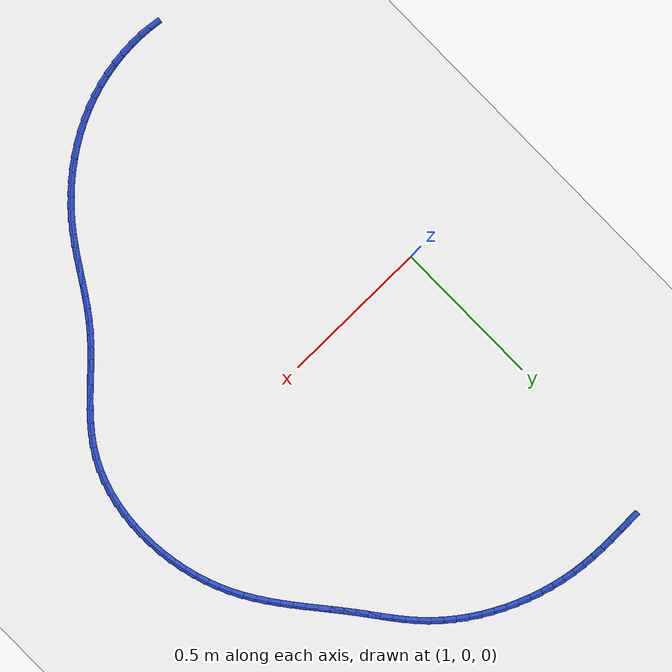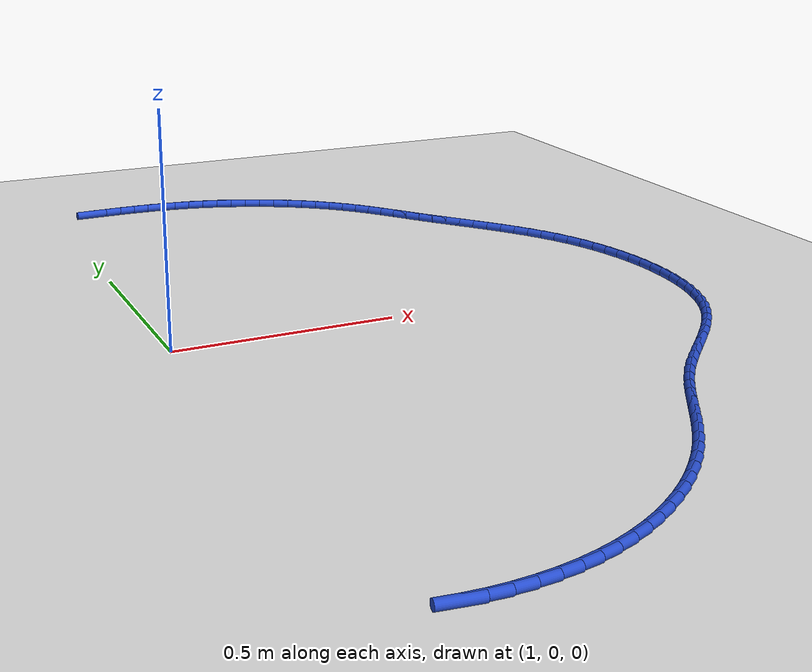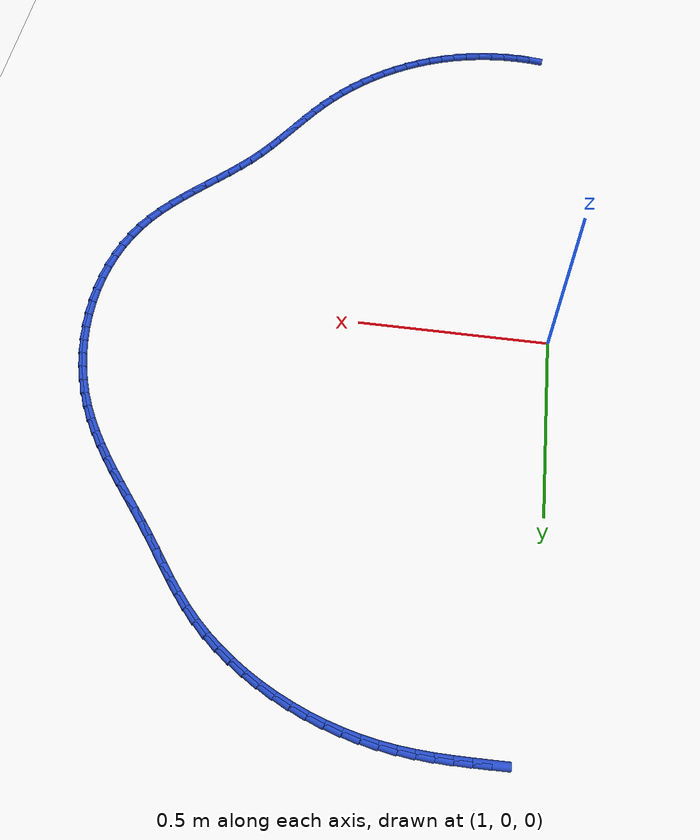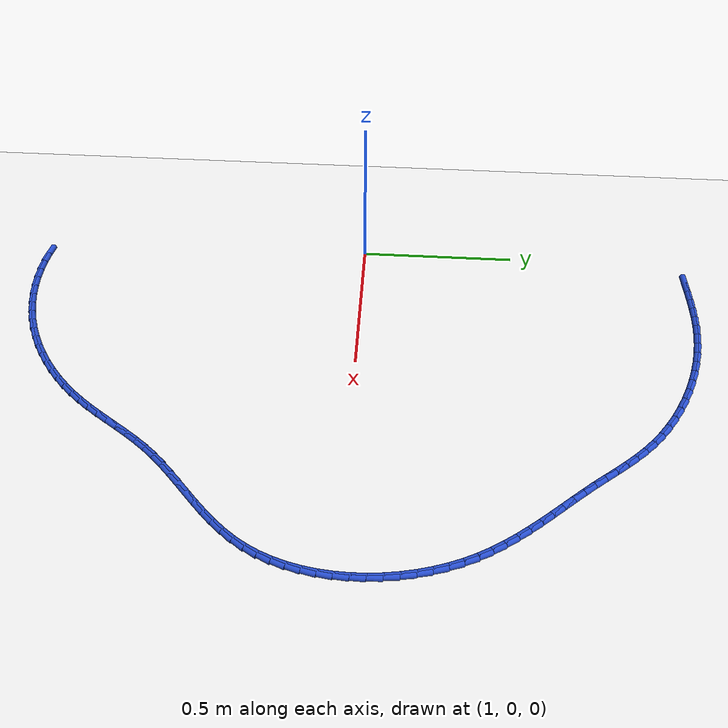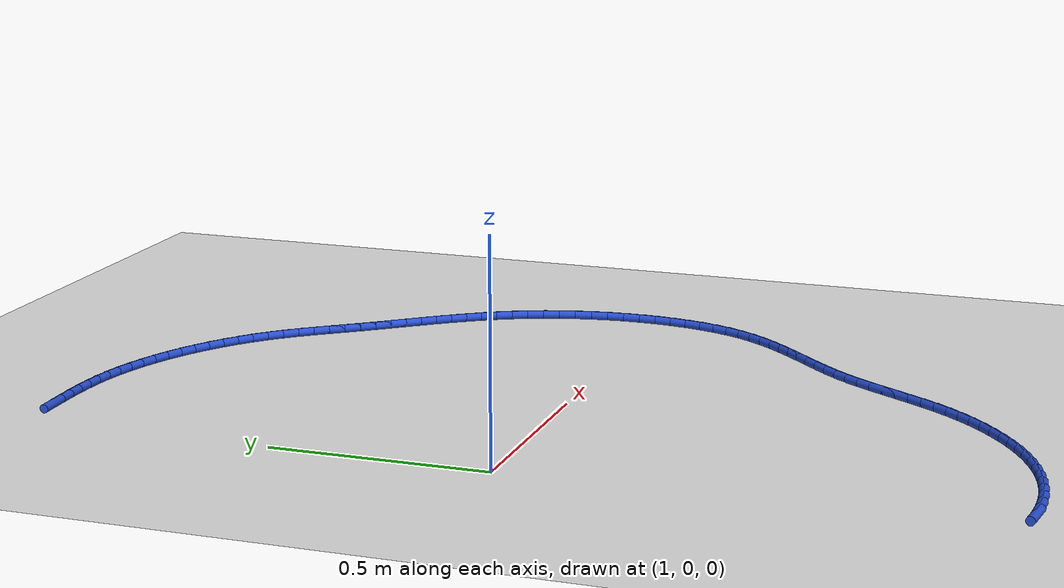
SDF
<sdf version="1.6">
 <world name="default">
  <model name="ground_plane">
   <static>1</static>
   <link name="link">
    <collision name="collision">
     <geometry><plane><normal>0 0 1</normal><size>100 100</size></plane></geometry>
     <surface><friction><ode><mu>100</mu><mu2>50</mu2></ode></friction></surface>
    </collision>
    <visual name="visual">
     <cast_shadows>0</cast_shadows>
     <geometry><plane><normal>0 0 1</normal><size>100 100</size></plane></geometry>
     <material>
      <script><uri>file://media/materials/scripts/gazebo.material</uri><name>Gazebo/WhiteGlow</name></script>
     </material>
    </visual>
   </link>
  </model>
  <model name="line">
   <link name="link_43">
    <pose>1.0948288908993886 1.072329613193624 0.01 0 1.57 0.027946312179015293</pose>
    <collision name="collision">
     <geometry><cylinder><radius>0.01</radius><length>0.08</length></cylinder></geometry>
    </collision>
    <visual name="visual">
     <material>
      <script><name>Gazebo/Blue</name><uri>file://media/materials/scripts/gazebo.material</uri></script>
     </material>
     <geometry><cylinder><radius>0.01</radius><length>0.08</length></cylinder></geometry>
    </visual>
   </link>
   <link name="link_44">
    <pose>1.1346138103363617 1.0734417445108073 0.01 0 1.57 0.015410495042441434</pose>
    <collision name="collision">
     <geometry><cylinder><radius>0.01</radius><length>0.08</length></cylinder></geometry>
    </collision>
    <visual name="visual">
     <material>
      <script><name>Gazebo/Blue</name><uri>file://media/materials/scripts/gazebo.material</uri></script>
     </material>
     <geometry><cylinder><radius>0.01</radius><length>0.08</length></cylinder></geometry>
    </visual>
   </link>
   <link name="link_45">
    <pose>1.173879106840559 1.0740468900726836 0.01 0 1.57 -0.0057107059708064066</pose>
    <collision name="collision">
     <geometry><cylinder><radius>0.01</radius><length>0.08</length></cylinder></geometry>
    </collision>
    <visual name="visual">
     <material>
      <script><name>Gazebo/Blue</name><uri>file://media/materials/scripts/gazebo.material</uri></script>
     </material>
     <geometry><cylinder><radius>0.01</radius><length>0.08</length></cylinder></geometry>
    </visual>
   </link>
   <link name="link_46">
    <pose>1.21276620763927 1.0738248148598422 0.01 0 1.57 -0.035419055421516854</pose>
    <collision name="collision">
     <geometry><cylinder><radius>0.01</radius><length>0.08</length></cylinder></geometry>
    </collision>
    <visual name="visual">
     <material>
      <script><name>Gazebo/Blue</name><uri>file://media/materials/scripts/gazebo.material</uri></script>
     </material>
     <geometry><cylinder><radius>0.01</radius><length>0.08</length></cylinder></geometry>
    </visual>
   </link>
   <link name="link_47">
    <pose>1.2514165399597839 1.0724552838528723 0.01 0 1.57 -0.07345655687997786</pose>
    <collision name="collision">
     <geometry><cylinder><radius>0.01</radius><length>0.08</length></cylinder></geometry>
    </collision>
    <visual name="visual">
     <material>
      <script><name>Gazebo/Blue</name><uri>file://media/materials/scripts/gazebo.material</uri></script>
     </material>
     <geometry><cylinder><radius>0.01</radius><length>0.08</length></cylinder></geometry>
    </visual>
   </link>
   <link name="link_48">
    <pose>1.2899715310293896 1.0696180620323636 0.01 0 1.57 -0.1192505983145177</pose>
    <collision name="collision">
     <geometry><cylinder><radius>0.01</radius><length>0.08</length></cylinder></geometry>
    </collision>
    <visual name="visual">
     <material>
      <script><name>Gazebo/Blue</name><uri>file://media/materials/scripts/gazebo.material</uri></script>
     </material>
     <geometry><cylinder><radius>0.01</radius><length>0.08</length></cylinder></geometry>
    </visual>
   </link>
   <link name="link_49">
    <pose>1.3285726071095398 1.064992915519093 0.01 0 1.57 -0.17047003964254903</pose>
    <collision name="collision">
     <geometry><cylinder><radius>0.01</radius><length>0.08</length></cylinder></geometry>
    </collision>
    <visual name="visual">
     <material>
      <script><name>Gazebo/Blue</name><uri>file://media/materials/scripts/gazebo.material</uri></script>
     </material>
     <geometry><cylinder><radius>0.01</radius><length>0.08</length></cylinder></geometry>
    </visual>
   </link>
   <link name="link_50">
    <pose>1.3673054528960336 1.0583254143526675 0.01 0 1.57 -0.22140598250828952</pose>
    <collision name="collision">
     <geometry><cylinder><radius>0.01</radius><length>0.08</length></cylinder></geometry>
    </collision>
    <visual name="visual">
     <material>
      <script><name>Gazebo/Blue</name><uri>file://media/materials/scripts/gazebo.material</uri></script>
     </material>
     <geometry><cylinder><radius>0.01</radius><length>0.08</length></cylinder></geometry>
    </visual>
   </link>
   <link name="link_51">
    <pose>1.406049852251417 1.049604198202317 0.01 0 1.57 -0.27121711104897983</pose>
    <collision name="collision">
     <geometry><cylinder><radius>0.01</radius><length>0.08</length></cylinder></geometry>
    </collision>
    <visual name="visual">
     <material>
      <script><name>Gazebo/Blue</name><uri>file://media/materials/scripts/gazebo.material</uri></script>
     </material>
     <geometry><cylinder><radius>0.01</radius><length>0.08</length></cylinder></geometry>
    </visual>
   </link>
   <link name="link_52">
    <pose>1.4446380582624538 1.0388740176712756 0.01 0 1.57 -0.3203301551867465</pose>
    <collision name="collision">
     <geometry><cylinder><radius>0.01</radius><length>0.08</length></cylinder></geometry>
    </collision>
    <visual name="visual">
     <material>
      <script><name>Gazebo/Blue</name><uri>file://media/materials/scripts/gazebo.material</uri></script>
     </material>
     <geometry><cylinder><radius>0.01</radius><length>0.08</length></cylinder></geometry>
    </visual>
   </link>
   <link name="link_53">
    <pose>1.4829023240159038 1.0261796233627778 0.01 0 1.57 -0.36915438253753846</pose>
    <collision name="collision">
     <geometry><cylinder><radius>0.01</radius><length>0.08</length></cylinder></geometry>
    </collision>
    <visual name="visual">
     <material>
      <script><name>Gazebo/Blue</name><uri>file://media/materials/scripts/gazebo.material</uri></script>
     </material>
     <geometry><cylinder><radius>0.01</radius><length>0.08</length></cylinder></geometry>
    </visual>
   </link>
   <link name="link_54">
    <pose>1.5206749025985302 1.0115657658800576 0.01 0 1.57 -0.41808570130019196</pose>
    <collision name="collision">
     <geometry><cylinder><radius>0.01</radius><length>0.08</length></cylinder></geometry>
    </collision>
    <visual name="visual">
     <material>
      <script><name>Gazebo/Blue</name><uri>file://media/materials/scripts/gazebo.material</uri></script>
     </material>
     <geometry><cylinder><radius>0.01</radius><length>0.08</length></cylinder></geometry>
    </visual>
   </link>
   <link name="link_55">
    <pose>1.5577880470970946 0.995077195826349 0.01 0 1.57 -0.4675104874489359</pose>
    <collision name="collision">
     <geometry><cylinder><radius>0.01</radius><length>0.08</length></cylinder></geometry>
    </collision>
    <visual name="visual">
     <material>
      <script><name>Gazebo/Blue</name><uri>file://media/materials/scripts/gazebo.material</uri></script>
     </material>
     <geometry><cylinder><radius>0.01</radius><length>0.08</length></cylinder></geometry>
    </visual>
   </link>
   <link name="link_56">
    <pose>1.5940740105983588 0.9767586638048867 0.01 0 1.57 -0.5178087026499977</pose>
    <collision name="collision">
     <geometry><cylinder><radius>0.01</radius><length>0.08</length></cylinder></geometry>
    </collision>
    <visual name="visual">
     <material>
      <script><name>Gazebo/Blue</name><uri>file://media/materials/scripts/gazebo.material</uri></script>
     </material>
     <geometry><cylinder><radius>0.01</radius><length>0.08</length></cylinder></geometry>
    </visual>
   </link>
   <link name="link_57">
    <pose>1.6293650461890847 0.9566549204189045 0.01 0 1.57 -0.5693558706678074</pose>
    <collision name="collision">
     <geometry><cylinder><radius>0.01</radius><length>0.08</length></cylinder></geometry>
    </collision>
    <visual name="visual">
     <material>
      <script><name>Gazebo/Blue</name><uri>file://media/materials/scripts/gazebo.material</uri></script>
     </material>
     <geometry><cylinder><radius>0.01</radius><length>0.08</length></cylinder></geometry>
    </visual>
   </link>
   <link name="link_58">
    <pose>1.6634934069560345 0.9348107162716368 0.01 0 1.57 -0.622523420351744</pose>
    <collision name="collision">
     <geometry><cylinder><radius>0.01</radius><length>0.08</length></cylinder></geometry>
    </collision>
    <visual name="visual">
     <material>
      <script><name>Gazebo/Blue</name><uri>file://media/materials/scripts/gazebo.material</uri></script>
     </material>
     <geometry><cylinder><radius>0.01</radius><length>0.08</length></cylinder></geometry>
    </visual>
   </link>
   <link name="link_59">
    <pose>1.6962913459859688 0.9112708019663178 0.01 0 1.57 -0.6776767998014511</pose>
    <collision name="collision">
     <geometry><cylinder><radius>0.01</radius><length>0.08</length></cylinder></geometry>
    </collision>
    <visual name="visual">
     <material>
      <script><name>Gazebo/Blue</name><uri>file://media/materials/scripts/gazebo.material</uri></script>
     </material>
     <geometry><cylinder><radius>0.01</radius><length>0.08</length></cylinder></geometry>
    </visual>
   </link>
   <link name="link_60">
    <pose>1.727591116365651 0.8860799281061817 0.01 0 1.57 -0.7351706431296637</pose>
    <collision name="collision">
     <geometry><cylinder><radius>0.01</radius><length>0.08</length></cylinder></geometry>
    </collision>
    <visual name="visual">
     <material>
      <script><name>Gazebo/Blue</name><uri>file://media/materials/scripts/gazebo.material</uri></script>
     </material>
     <geometry><cylinder><radius>0.01</radius><length>0.08</length></cylinder></geometry>
    </visual>
   </link>
   <link name="link_61">
    <pose>1.7572249711818426 0.8592828452944626 0.01 0 1.57 -0.7950179411912113</pose>
    <collision name="collision">
     <geometry><cylinder><radius>0.01</radius><length>0.08</length></cylinder></geometry>
    </collision>
    <visual name="visual">
     <material>
      <script><name>Gazebo/Blue</name><uri>file://media/materials/scripts/gazebo.material</uri></script>
     </material>
     <geometry><cylinder><radius>0.01</radius><length>0.08</length></cylinder></geometry>
    </visual>
   </link>
   <link name="link_62">
    <pose>1.785037131989895 0.8309303765635527 0.01 0 1.57 -0.8494318743351492</pose>
    <collision name="collision">
     <geometry><cylinder><radius>0.01</radius><length>0.08</length></cylinder></geometry>
    </collision>
    <visual name="visual">
     <material>
      <script><name>Gazebo/Blue</name><uri>file://media/materials/scripts/gazebo.material</uri></script>
     </material>
     <geometry><cylinder><radius>0.01</radius><length>0.08</length></cylinder></geometry>
    </visual>
   </link>
   <link name="link_63">
    <pose>1.8111650797487953 0.8012221356570319 0.01 0 1.57 -0.8898018991293719</pose>
    <collision name="collision">
     <geometry><cylinder><radius>0.01</radius><length>0.08</length></cylinder></geometry>
    </collision>
    <visual name="visual">
     <material>
      <script><name>Gazebo/Blue</name><uri>file://media/materials/scripts/gazebo.material</uri></script>
     </material>
     <geometry><cylinder><radius>0.01</radius><length>0.08</length></cylinder></geometry>
    </visual>
   </link>
   <link name="link_64">
    <pose>1.8360499085437387 0.7705117801868624 0.01 0 1.57 -0.9154983917307732</pose>
    <collision name="collision">
     <geometry><cylinder><radius>0.01</radius><length>0.08</length></cylinder></geometry>
    </collision>
    <visual name="visual">
     <material>
      <script><name>Gazebo/Blue</name><uri>file://media/materials/scripts/gazebo.material</uri></script>
     </material>
     <geometry><cylinder><radius>0.01</radius><length>0.08</length></cylinder></geometry>
    </visual>
   </link>
   <link name="link_65">
    <pose>1.860146752454534 0.7391600912221141 0.01 0 1.57 -0.9264902060715831</pose>
    <collision name="collision">
     <geometry><cylinder><radius>0.01</radius><length>0.08</length></cylinder></geometry>
    </collision>
    <visual name="visual">
     <material>
      <script><name>Gazebo/Blue</name><uri>file://media/materials/scripts/gazebo.material</uri></script>
     </material>
     <geometry><cylinder><radius>0.01</radius><length>0.08</length></cylinder></geometry>
    </visual>
   </link>
   <link name="link_66">
    <pose>1.8839107455609876 0.7075278498318556 0.01 0 1.57 -0.9228019884938927</pose>
    <collision name="collision">
     <geometry><cylinder><radius>0.01</radius><length>0.08</length></cylinder></geometry>
    </collision>
    <visual name="visual">
     <material>
      <script><name>Gazebo/Blue</name><uri>file://media/materials/scripts/gazebo.material</uri></script>
     </material>
     <geometry><cylinder><radius>0.01</radius><length>0.08</length></cylinder></geometry>
    </visual>
   </link>
   <link name="link_67">
    <pose>1.9077970219429063 0.6759758370851571 0.01 0 1.57 -0.9066860911887052</pose>
    <collision name="collision">
     <geometry><cylinder><radius>0.01</radius><length>0.08</length></cylinder></geometry>
    </collision>
    <visual name="visual">
     <material>
      <script><name>Gazebo/Blue</name><uri>file://media/materials/scripts/gazebo.material</uri></script>
     </material>
     <geometry><cylinder><radius>0.01</radius><length>0.08</length></cylinder></geometry>
    </visual>
   </link>
   <link name="link_68">
    <pose>1.9321906101087032 0.6448103667128161 0.01 0 1.57 -0.8928430830756112</pose>
    <collision name="collision">
     <geometry><cylinder><radius>0.01</radius><length>0.08</length></cylinder></geometry>
    </collision>
    <visual name="visual">
     <material>
      <script><name>Gazebo/Blue</name><uri>file://media/materials/scripts/gazebo.material</uri></script>
     </material>
     <geometry><cylinder><radius>0.01</radius><length>0.08</length></cylinder></geometry>
    </visual>
   </link>
   <link name="link_69">
    <pose>1.957017099077859 0.6139807987034206 0.01 0 1.57 -0.8871869909910638</pose>
    <collision name="collision">
     <geometry><cylinder><radius>0.01</radius><length>0.08</length></cylinder></geometry>
    </collision>
    <visual name="visual">
     <material>
      <script><name>Gazebo/Blue</name><uri>file://media/materials/scripts/gazebo.material</uri></script>
     </material>
     <geometry><cylinder><radius>0.01</radius><length>0.08</length></cylinder></geometry>
    </visual>
   </link>
   <link name="link_70">
    <pose>1.9820170685810303 0.5832927532069488 0.01 0 1.57 -0.8897308028658836</pose>
    <collision name="collision">
     <geometry><cylinder><radius>0.01</radius><length>0.08</length></cylinder></geometry>
    </collision>
    <visual name="visual">
     <material>
      <script><name>Gazebo/Blue</name><uri>file://media/materials/scripts/gazebo.material</uri></script>
     </material>
     <geometry><cylinder><radius>0.01</radius><length>0.08</length></cylinder></geometry>
    </visual>
   </link>
   <link name="link_71">
    <pose>2.006930590625704 0.5525514559064474 0.01 0 1.57 -0.9004846343471631</pose>
    <collision name="collision">
     <geometry><cylinder><radius>0.01</radius><length>0.08</length></cylinder></geometry>
    </collision>
    <visual name="visual">
     <material>
      <script><name>Gazebo/Blue</name><uri>file://media/materials/scripts/gazebo.material</uri></script>
     </material>
     <geometry><cylinder><radius>0.01</radius><length>0.08</length></cylinder></geometry>
    </visual>
   </link>
   <link name="link_72">
    <pose>2.0314977372193663 0.5215621324849643 0.01 0 1.57 -0.9194668621629304</pose>
    <collision name="collision">
     <geometry><cylinder><radius>0.01</radius><length>0.08</length></cylinder></geometry>
    </collision>
    <visual name="visual">
     <material>
      <script><name>Gazebo/Blue</name><uri>file://media/materials/scripts/gazebo.material</uri></script>
     </material>
     <geometry><cylinder><radius>0.01</radius><length>0.08</length></cylinder></geometry>
    </visual>
   </link>
   <link name="link_73">
    <pose>2.0554585803695047 0.4901300086255468 0.01 0 1.57 -0.946682331104961</pose>
    <collision name="collision">
     <geometry><cylinder><radius>0.01</radius><length>0.08</length></cylinder></geometry>
    </collision>
    <visual name="visual">
     <material>
      <script><name>Gazebo/Blue</name><uri>file://media/materials/scripts/gazebo.material</uri></script>
     </material>
     <geometry><cylinder><radius>0.01</radius><length>0.08</length></cylinder></geometry>
    </visual>
   </link>
   <link name="link_74">
    <pose>2.0785531920836067 0.45806031001124176 0.01 0 1.57 -0.9820838290811464</pose>
    <collision name="collision">
     <geometry><cylinder><radius>0.01</radius><length>0.08</length></cylinder></geometry>
    </collision>
    <visual name="visual">
     <material>
      <script><name>Gazebo/Blue</name><uri>file://media/materials/scripts/gazebo.material</uri></script>
     </material>
     <geometry><cylinder><radius>0.01</radius><length>0.08</length></cylinder></geometry>
    </visual>
   </link>
   <link name="link_75">
    <pose>2.1005216443691594 0.42515826232509707 0.01 0 1.57 -1.025517982510004</pose>
    <collision name="collision">
     <geometry><cylinder><radius>0.01</radius><length>0.08</length></cylinder></geometry>
    </collision>
    <visual name="visual">
     <material>
      <script><name>Gazebo/Blue</name><uri>file://media/materials/scripts/gazebo.material</uri></script>
     </material>
     <geometry><cylinder><radius>0.01</radius><length>0.08</length></cylinder></geometry>
    </visual>
   </link>
   <link name="link_76">
    <pose>2.121104009233649 0.3912290912501599 0.01 0 1.57 -1.0766597792221881</pose>
    <collision name="collision">
     <geometry><cylinder><radius>0.01</radius><length>0.08</length></cylinder></geometry>
    </collision>
    <visual name="visual">
     <material>
      <script><name>Gazebo/Blue</name><uri>file://media/materials/scripts/gazebo.material</uri></script>
     </material>
     <geometry><cylinder><radius>0.01</radius><length>0.08</length></cylinder></geometry>
    </visual>
   </link>
   <link name="link_77">
    <pose>2.1400403586845638 0.3560780224694773 0.01 0 1.57 -1.1348534049855727</pose>
    <collision name="collision">
     <geometry><cylinder><radius>0.01</radius><length>0.08</length></cylinder></geometry>
    </collision>
    <visual name="visual">
     <material>
      <script><name>Gazebo/Blue</name><uri>file://media/materials/scripts/gazebo.material</uri></script>
     </material>
     <geometry><cylinder><radius>0.01</radius><length>0.08</length></cylinder></geometry>
    </visual>
   </link>
   <link name="link_78">
    <pose>2.157072829681795 0.31951460588871583 0.01 0 1.57 -1.1957813893251579</pose>
    <collision name="collision">
     <geometry><cylinder><radius>0.01</radius><length>0.08</length></cylinder></geometry>
    </collision>
    <visual name="visual">
     <material>
      <script><name>Gazebo/Blue</name><uri>file://media/materials/scripts/gazebo.material</uri></script>
     </material>
     <geometry><cylinder><radius>0.01</radius><length>0.08</length></cylinder></geometry>
    </visual>
   </link>
   <link name="link_79">
    <pose>2.1720275161482916 0.28152420592514815 0.01 0 1.57 -1.254845443018751</pose>
    <collision name="collision">
     <geometry><cylinder><radius>0.01</radius><length>0.08</length></cylinder></geometry>
    </collision>
    <visual name="visual">
     <material>
      <script><name>Gazebo/Blue</name><uri>file://media/materials/scripts/gazebo.material</uri></script>
     </material>
     <geometry><cylinder><radius>0.01</radius><length>0.08</length></cylinder></geometry>
    </visual>
   </link>
   <link name="link_80">
    <pose>2.1848417542642675 0.24232513971872902 0.01 0 1.57 -1.3123824484128643</pose>
    <collision name="collision">
     <geometry><cylinder><radius>0.01</radius><length>0.08</length></cylinder></geometry>
    </collision>
    <visual name="visual">
     <material>
      <script><name>Gazebo/Blue</name><uri>file://media/materials/scripts/gazebo.material</uri></script>
     </material>
     <geometry><cylinder><radius>0.01</radius><length>0.08</length></cylinder></geometry>
    </visual>
   </link>
   <link name="link_81">
    <pose>2.19546053804682 0.2021517607070836 0.01 0 1.57 -1.369041347383175</pose>
    <collision name="collision">
     <geometry><cylinder><radius>0.01</radius><length>0.08</length></cylinder></geometry>
    </collision>
    <visual name="visual">
     <material>
      <script><name>Gazebo/Blue</name><uri>file://media/materials/scripts/gazebo.material</uri></script>
     </material>
     <geometry><cylinder><radius>0.01</radius><length>0.08</length></cylinder></geometry>
    </visual>
   </link>
   <link name="link_82">
    <pose>2.2038288615130464 0.16123842232783664 0.01 0 1.57 -1.425449720010228</pose>
    <collision name="collision">
     <geometry><cylinder><radius>0.01</radius><length>0.08</length></cylinder></geometry>
    </collision>
    <visual name="visual">
     <material>
      <script><name>Gazebo/Blue</name><uri>file://media/materials/scripts/gazebo.material</uri></script>
     </material>
     <geometry><cylinder><radius>0.01</radius><length>0.08</length></cylinder></geometry>
    </visual>
   </link>
   <link name="link_83">
    <pose>2.2098917186800415 0.11981947801861419 0.01 0 1.57 -1.4822216073116894</pose>
    <collision name="collision">
     <geometry><cylinder><radius>0.01</radius><length>0.08</length></cylinder></geometry>
    </collision>
    <visual name="visual">
     <material>
      <script><name>Gazebo/Blue</name><uri>file://media/materials/scripts/gazebo.material</uri></script>
     </material>
     <geometry><cylinder><radius>0.01</radius><length>0.08</length></cylinder></geometry>
    </visual>
   </link>
   <link name="link_84">
    <pose>2.2135941035649016 0.07812928121704069 0.01 0 1.57 -1.5399650694507427</pose>
    <collision name="collision">
     <geometry><cylinder><radius>0.01</radius><length>0.08</length></cylinder></geometry>
    </collision>
    <visual name="visual">
     <material>
      <script><name>Gazebo/Blue</name><uri>file://media/materials/scripts/gazebo.material</uri></script>
     </material>
     <geometry><cylinder><radius>0.01</radius><length>0.08</length></cylinder></geometry>
    </visual>
   </link>
   <link name="link_85">
    <pose>2.2148810101847243 0.03640218536074223 0.01 0 1.57 1.542304452127561</pose>
    <collision name="collision">
     <geometry><cylinder><radius>0.01</radius><length>0.08</length></cylinder></geometry>
    </collision>
    <visual name="visual">
     <material>
      <script><name>Gazebo/Blue</name><uri>file://media/materials/scripts/gazebo.material</uri></script>
     </material>
     <geometry><cylinder><radius>0.01</radius><length>0.08</length></cylinder></geometry>
    </visual>
   </link>
   <link name="link_86">
    <pose>2.213697432556604 -0.005127456112656345 0.01 0 1.57 1.4807904475278808</pose>
    <collision name="collision">
     <geometry><cylinder><radius>0.01</radius><length>0.08</length></cylinder></geometry>
    </collision>
    <visual name="visual">
     <material>
      <script><name>Gazebo/Blue</name><uri>file://media/materials/scripts/gazebo.material</uri></script>
     </material>
     <geometry><cylinder><radius>0.01</radius><length>0.08</length></cylinder></geometry>
    </visual>
   </link>
   <link name="link_87">
    <pose>2.209988364697639 -0.0462252897655298 0.01 0 1.57 1.4164728947208478</pose>
    <collision name="collision">
     <geometry><cylinder><radius>0.01</radius><length>0.08</length></cylinder></geometry>
    </collision>
    <visual name="visual">
     <material>
      <script><name>Gazebo/Blue</name><uri>file://media/materials/scripts/gazebo.material</uri></script>
     </material>
     <geometry><cylinder><radius>0.01</radius><length>0.08</length></cylinder></geometry>
    </visual>
   </link>
   <link name="link_88">
    <pose>2.2036988006249234 -0.08665696216025282 0.01 0 1.57 1.348746297103281</pose>
    <collision name="collision">
     <geometry><cylinder><radius>0.01</radius><length>0.08</length></cylinder></geometry>
    </collision>
    <visual name="visual">
     <material>
      <script><name>Gazebo/Blue</name><uri>file://media/materials/scripts/gazebo.material</uri></script>
     </material>
     <geometry><cylinder><radius>0.01</radius><length>0.08</length></cylinder></geometry>
    </visual>
   </link>
   <link name="link_89">
    <pose>2.194773734355556 -0.12618811985920095 0.01 0 1.57 1.2770309079898778</pose>
    <collision name="collision">
     <geometry><cylinder><radius>0.01</radius><length>0.08</length></cylinder></geometry>
    </collision>
    <visual name="visual">
     <material>
      <script><name>Gazebo/Blue</name><uri>file://media/materials/scripts/gazebo.material</uri></script>
     </material>
     <geometry><cylinder><radius>0.01</radius><length>0.08</length></cylinder></geometry>
    </visual>
   </link>
   <link name="link_90">
    <pose>2.183158159906631 -0.16458440942474745 0.01 0 1.57 1.2008044739917352</pose>
    <collision name="collision">
     <geometry><cylinder><radius>0.01</radius><length>0.08</length></cylinder></geometry>
    </collision>
    <visual name="visual">
     <material>
      <script><name>Gazebo/Blue</name><uri>file://media/materials/scripts/gazebo.material</uri></script>
     </material>
     <geometry><cylinder><radius>0.01</radius><length>0.08</length></cylinder></geometry>
    </visual>
   </link>
   <link name="link_91">
    <pose>2.1687970712952462 -0.20161147741926774 0.01 0 1.57 1.1196499758543605</pose>
    <collision name="collision">
     <geometry><cylinder><radius>0.01</radius><length>0.08</length></cylinder></geometry>
    </collision>
    <visual name="visual">
     <material>
      <script><name>Gazebo/Blue</name><uri>file://media/materials/scripts/gazebo.material</uri></script>
     </material>
     <geometry><cylinder><radius>0.01</radius><length>0.08</length></cylinder></geometry>
    </visual>
   </link>
   <link name="link_92">
    <pose>2.1516354625384966 -0.23703497040513666 0.01 0 1.57 1.0340268050109394</pose>
    <collision name="collision">
     <geometry><cylinder><radius>0.01</radius><length>0.08</length></cylinder></geometry>
    </collision>
    <visual name="visual">
     <material>
      <script><name>Gazebo/Blue</name><uri>file://media/materials/scripts/gazebo.material</uri></script>
     </material>
     <geometry><cylinder><radius>0.01</radius><length>0.08</length></cylinder></geometry>
    </visual>
   </link>
   <link name="link_93">
    <pose>2.1316379970065507 -0.27064150975207657 0.01 0 1.57 0.9543444096662881</pose>
    <collision name="collision">
     <geometry><cylinder><radius>0.01</radius><length>0.08</length></cylinder></geometry>
    </collision>
    <visual name="visual">
     <material>
      <script><name>Gazebo/Blue</name><uri>file://media/materials/scripts/gazebo.material</uri></script>
     </material>
     <geometry><cylinder><radius>0.01</radius><length>0.08</length></cylinder></geometry>
    </visual>
   </link>
   <link name="link_94">
    <pose>2.1090511966450496 -0.3025182823490924 0.01 0 1.57 0.8890549006917717</pose>
    <collision name="collision">
     <geometry><cylinder><radius>0.01</radius><length>0.08</length></cylinder></geometry>
    </collision>
    <visual name="visual">
     <material>
      <script><name>Gazebo/Blue</name><uri>file://media/materials/scripts/gazebo.material</uri></script>
     </material>
     <geometry><cylinder><radius>0.01</radius><length>0.08</length></cylinder></geometry>
    </visual>
   </link>
   <link name="link_95">
    <pose>2.084332360830332 -0.33297724180659843 0.01 0 1.57 0.8386245362617275</pose>
    <collision name="collision">
     <geometry><cylinder><radius>0.01</radius><length>0.08</length></cylinder></geometry>
    </collision>
    <visual name="visual">
     <material>
      <script><name>Gazebo/Blue</name><uri>file://media/materials/scripts/gazebo.material</uri></script>
     </material>
     <geometry><cylinder><radius>0.01</radius><length>0.08</length></cylinder></geometry>
    </visual>
   </link>
   <link name="link_96">
    <pose>2.057943864649191 -0.36233575432018955 0.01 0 1.57 0.8028368288639673</pose>
    <collision name="collision">
     <geometry><cylinder><radius>0.01</radius><length>0.08</length></cylinder></geometry>
    </collision>
    <visual name="visual">
     <material>
      <script><name>Gazebo/Blue</name><uri>file://media/materials/scripts/gazebo.material</uri></script>
     </material>
     <geometry><cylinder><radius>0.01</radius><length>0.08</length></cylinder></geometry>
    </visual>
   </link>
   <link name="link_97">
    <pose>2.0303480831884206 -0.39091118608546005 0.01 0 1.57 0.7813065517197624</pose>
    <collision name="collision">
     <geometry><cylinder><radius>0.01</radius><length>0.08</length></cylinder></geometry>
    </collision>
    <visual name="visual">
     <material>
      <script><name>Gazebo/Blue</name><uri>file://media/materials/scripts/gazebo.material</uri></script>
     </material>
     <geometry><cylinder><radius>0.01</radius><length>0.08</length></cylinder></geometry>
    </visual>
   </link>
   <link name="link_98">
    <pose>2.002007391534812 -0.41902090329800395 0.01 0 1.57 0.7737019108124568</pose>
    <collision name="collision">
     <geometry><cylinder><radius>0.01</radius><length>0.08</length></cylinder></geometry>
    </collision>
    <visual name="visual">
     <material>
      <script><name>Gazebo/Blue</name><uri>file://media/materials/scripts/gazebo.material</uri></script>
     </material>
     <geometry><cylinder><radius>0.01</radius><length>0.08</length></cylinder></geometry>
    </visual>
   </link>
   <link name="link_99">
    <pose>1.973384164775158 -0.446982272153416 0.01 0 1.57 0.7798656193886697</pose>
    <collision name="collision">
     <geometry><cylinder><radius>0.01</radius><length>0.08</length></cylinder></geometry>
    </collision>
    <visual name="visual">
     <material>
      <script><name>Gazebo/Blue</name><uri>file://media/materials/scripts/gazebo.material</uri></script>
     </material>
     <geometry><cylinder><radius>0.01</radius><length>0.08</length></cylinder></geometry>
    </visual>
   </link>
   <link name="link_100">
    <pose>1.9449407779962526 -0.47511265884728965 0.01 0 1.57 0.7998535329473717</pose>
    <collision name="collision">
     <geometry><cylinder><radius>0.01</radius><length>0.08</length></cylinder></geometry>
    </collision>
    <visual name="visual">
     <material>
      <script><name>Gazebo/Blue</name><uri>file://media/materials/scripts/gazebo.material</uri></script>
     </material>
     <geometry><cylinder><radius>0.01</radius><length>0.08</length></cylinder></geometry>
    </visual>
   </link>
   <link name="link_101">
    <pose>1.9171396062848878 -0.5037294295752195 0.01 0 1.57 0.833900366006603</pose>
    <collision name="collision">
     <geometry><cylinder><radius>0.01</radius><length>0.08</length></cylinder></geometry>
    </collision>
    <visual name="visual">
     <material>
      <script><name>Gazebo/Blue</name><uri>file://media/materials/scripts/gazebo.material</uri></script>
     </material>
     <geometry><cylinder><radius>0.01</radius><length>0.08</length></cylinder></geometry>
    </visual>
   </link>
   <link name="link_102">
    <pose>1.8904430247278563 -0.5331499505327997 0.01 0 1.57 0.881807467163187</pose>
    <collision name="collision">
     <geometry><cylinder><radius>0.01</radius><length>0.08</length></cylinder></geometry>
    </collision>
    <visual name="visual">
     <material>
      <script><name>Gazebo/Blue</name><uri>file://media/materials/scripts/gazebo.material</uri></script>
     </material>
     <geometry><cylinder><radius>0.01</radius><length>0.08</length></cylinder></geometry>
    </visual>
   </link>
   <link name="link_103">
    <pose>1.8652970570924323 -0.5636803284850547 0.01 0 1.57 0.9309115470091401</pose>
    <collision name="collision">
     <geometry><cylinder><radius>0.01</radius><length>0.08</length></cylinder></geometry>
    </collision>
    <visual name="visual">
     <material>
      <script><name>Gazebo/Blue</name><uri>file://media/materials/scripts/gazebo.material</uri></script>
     </material>
     <geometry><cylinder><radius>0.01</radius><length>0.08</length></cylinder></geometry>
    </visual>
   </link>
   <link name="link_104">
    <pose>1.8417309514423807 -0.5953396806918844 0.01 0 1.57 0.9674392657009883</pose>
    <collision name="collision">
     <geometry><cylinder><radius>0.01</radius><length>0.08</length></cylinder></geometry>
    </collision>
    <visual name="visual">
     <material>
      <script><name>Gazebo/Blue</name><uri>file://media/materials/scripts/gazebo.material</uri></script>
     </material>
     <geometry><cylinder><radius>0.01</radius><length>0.08</length></cylinder></geometry>
    </visual>
   </link>
   <link name="link_105">
    <pose>1.8193332336961252 -0.6278436455171639 0.01 0 1.57 0.9906088270312027</pose>
    <collision name="collision">
     <geometry><cylinder><radius>0.01</radius><length>0.08</length></cylinder></geometry>
    </collision>
    <visual name="visual">
     <material>
      <script><name>Gazebo/Blue</name><uri>file://media/materials/scripts/gazebo.material</uri></script>
     </material>
     <geometry><cylinder><radius>0.01</radius><length>0.08</length></cylinder></geometry>
    </visual>
   </link>
   <link name="link_106">
    <pose>1.7976712844779128 -0.6608933007890683 0.01 0 1.57 1.000437934483701</pose>
    <collision name="collision">
     <geometry><cylinder><radius>0.01</radius><length>0.08</length></cylinder></geometry>
    </collision>
    <visual name="visual">
     <material>
      <script><name>Gazebo/Blue</name><uri>file://media/materials/scripts/gazebo.material</uri></script>
     </material>
     <geometry><cylinder><radius>0.01</radius><length>0.08</length></cylinder></geometry>
    </visual>
   </link>
   <link name="link_107">
    <pose>1.7763124844119917 -0.6941897243357712 0.01 0 1.57 0.9969735425856978</pose>
    <collision name="collision">
     <geometry><cylinder><radius>0.01</radius><length>0.08</length></cylinder></geometry>
    </collision>
    <visual name="visual">
     <material>
      <script><name>Gazebo/Blue</name><uri>file://media/materials/scripts/gazebo.material</uri></script>
     </material>
     <geometry><cylinder><radius>0.01</radius><length>0.08</length></cylinder></geometry>
    </visual>
   </link>
   <link name="link_108">
    <pose>1.7548242141226098 -0.7274339939854473 0.01 0 1.57 0.9802395073665564</pose>
    <collision name="collision">
     <geometry><cylinder><radius>0.01</radius><length>0.08</length></cylinder></geometry>
    </collision>
    <visual name="visual">
     <material>
      <script><name>Gazebo/Blue</name><uri>file://media/materials/scripts/gazebo.material</uri></script>
     </material>
     <geometry><cylinder><radius>0.01</radius><length>0.08</length></cylinder></geometry>
    </visual>
   </link>
   <link name="link_109">
    <pose>1.7327738542340156 -0.7603271875662705 0.01 0 1.57 0.950254974419418</pose>
    <collision name="collision">
     <geometry><cylinder><radius>0.01</radius><length>0.08</length></cylinder></geometry>
    </collision>
    <visual name="visual">
     <material>
      <script><name>Gazebo/Blue</name><uri>file://media/materials/scripts/gazebo.material</uri></script>
     </material>
     <geometry><cylinder><radius>0.01</radius><length>0.08</length></cylinder></geometry>
    </visual>
   </link>
   <link name="link_110">
    <pose>1.7097287853704557 -0.7925703829064152 0.01 0 1.57 0.9072732859183207</pose>
    <collision name="collision">
     <geometry><cylinder><radius>0.01</radius><length>0.08</length></cylinder></geometry>
    </collision>
    <visual name="visual">
     <material>
      <script><name>Gazebo/Blue</name><uri>file://media/materials/scripts/gazebo.material</uri></script>
     </material>
     <geometry><cylinder><radius>0.01</radius><length>0.08</length></cylinder></geometry>
    </visual>
   </link>
   <link name="link_111">
    <pose>1.685262299866476 -0.823866832941263 0.01 0 1.57 0.8569672941479681</pose>
    <collision name="collision">
     <geometry><cylinder><radius>0.01</radius><length>0.08</length></cylinder></geometry>
    </collision>
    <visual name="visual">
     <material>
      <script><name>Gazebo/Blue</name><uri>file://media/materials/scripts/gazebo.material</uri></script>
     </material>
     <geometry><cylinder><radius>0.01</radius><length>0.08</length></cylinder></geometry>
    </visual>
   </link>
   <link name="link_112">
    <pose>1.6591619004522997 -0.8539986054588121 0.01 0 1.57 0.8061131091636164</pose>
    <collision name="collision">
     <geometry><cylinder><radius>0.01</radius><length>0.08</length></cylinder></geometry>
    </collision>
    <visual name="visual">
     <material>
      <script><name>Gazebo/Blue</name><uri>file://media/materials/scripts/gazebo.material</uri></script>
     </material>
     <geometry><cylinder><radius>0.01</radius><length>0.08</length></cylinder></geometry>
    </visual>
   </link>
   <link name="link_113">
    <pose>1.631484649984046 -0.8828469480348842 0.01 0 1.57 0.7549056599125279</pose>
    <collision name="collision">
     <geometry><cylinder><radius>0.01</radius><length>0.08</length></cylinder></geometry>
    </collision>
    <visual name="visual">
     <material>
      <script><name>Gazebo/Blue</name><uri>file://media/materials/scripts/gazebo.material</uri></script>
     </material>
     <geometry><cylinder><radius>0.01</radius><length>0.08</length></cylinder></geometry>
    </visual>
   </link>
   <link name="link_114">
    <pose>1.6023047766026628 -0.9102994239023434 0.01 0 1.57 0.7031105783852079</pose>
    <collision name="collision">
     <geometry><cylinder><radius>0.01</radius><length>0.08</length></cylinder></geometry>
    </collision>
    <visual name="visual">
     <material>
      <script><name>Gazebo/Blue</name><uri>file://media/materials/scripts/gazebo.material</uri></script>
     </material>
     <geometry><cylinder><radius>0.01</radius><length>0.08</length></cylinder></geometry>
    </visual>
   </link>
   <link name="link_115">
    <pose>1.5716965084490973 -0.9362435962940541 0.01 0 1.57 0.6505044002901763</pose>
    <collision name="collision">
     <geometry><cylinder><radius>0.01</radius><length>0.08</length></cylinder></geometry>
    </collision>
    <visual name="visual">
     <material>
      <script><name>Gazebo/Blue</name><uri>file://media/materials/scripts/gazebo.material</uri></script>
     </material>
     <geometry><cylinder><radius>0.01</radius><length>0.08</length></cylinder></geometry>
    </visual>
   </link>
   <link name="link_116">
    <pose>1.5397340736642982 -0.9605670284428789 0.01 0 1.57 0.5968771197075307</pose>
    <collision name="collision">
     <geometry><cylinder><radius>0.01</radius><length>0.08</length></cylinder></geometry>
    </collision>
    <visual name="visual">
     <material>
      <script><name>Gazebo/Blue</name><uri>file://media/materials/scripts/gazebo.material</uri></script>
     </material>
     <geometry><cylinder><radius>0.01</radius><length>0.08</length></cylinder></geometry>
    </visual>
   </link>
   <link name="link_117">
    <pose>1.5064917003892127 -0.9831572835816822 0.01 0 1.57 0.5420356924792299</pose>
    <collision name="collision">
     <geometry><cylinder><radius>0.01</radius><length>0.08</length></cylinder></geometry>
    </collision>
    <visual name="visual">
     <material>
      <script><name>Gazebo/Blue</name><uri>file://media/materials/scripts/gazebo.material</uri></script>
     </material>
     <geometry><cylinder><radius>0.01</radius><length>0.08</length></cylinder></geometry>
    </visual>
   </link>
   <link name="link_118">
    <pose>1.4720436167647883 -1.003901924943328 0.01 0 1.57 0.48580863427175003</pose>
    <collision name="collision">
     <geometry><cylinder><radius>0.01</radius><length>0.08</length></cylinder></geometry>
    </collision>
    <visual name="visual">
     <material>
      <script><name>Gazebo/Blue</name><uri>file://media/materials/scripts/gazebo.material</uri></script>
     </material>
     <geometry><cylinder><radius>0.01</radius><length>0.08</length></cylinder></geometry>
    </visual>
   </link>
   <link name="link_119">
    <pose>1.436464050931973 -1.02268851576068 0.01 0 1.57 0.4280517824723838</pose>
    <collision name="collision">
     <geometry><cylinder><radius>0.01</radius><length>0.08</length></cylinder></geometry>
    </collision>
    <visual name="visual">
     <material>
      <script><name>Gazebo/Blue</name><uri>file://media/materials/scripts/gazebo.material</uri></script>
     </material>
     <geometry><cylinder><radius>0.01</radius><length>0.08</length></cylinder></geometry>
    </visual>
   </link>
   <link name="link_120">
    <pose>1.399827231031715 -1.039404619266602 0.01 0 1.57 0.3686551715781943</pose>
    <collision name="collision">
     <geometry><cylinder><radius>0.01</radius><length>0.08</length></cylinder></geometry>
    </collision>
    <visual name="visual">
     <material>
      <script><name>Gazebo/Blue</name><uri>file://media/materials/scripts/gazebo.material</uri></script>
     </material>
     <geometry><cylinder><radius>0.01</radius><length>0.08</length></cylinder></geometry>
    </visual>
   </link>
   <link name="link_121">
    <pose>1.3622073852049605 -1.053937798693958 0.01 0 1.57 0.30755685893920914</pose>
    <collision name="collision">
     <geometry><cylinder><radius>0.01</radius><length>0.08</length></cylinder></geometry>
    </collision>
    <visual name="visual">
     <material>
      <script><name>Gazebo/Blue</name><uri>file://media/materials/scripts/gazebo.material</uri></script>
     </material>
     <geometry><cylinder><radius>0.01</radius><length>0.08</length></cylinder></geometry>
    </visual>
   </link>
   <link name="link_122">
    <pose>1.3236790082350998 -1.0661757895810007 0.01 0 1.57 0.24558661936454032</pose>
    <collision name="collision">
     <geometry><cylinder><radius>0.01</radius><length>0.08</length></cylinder></geometry>
    </collision>
    <visual name="visual">
     <material>
      <script><name>Gazebo/Blue</name><uri>file://media/materials/scripts/gazebo.material</uri></script>
     </material>
     <geometry><cylinder><radius>0.01</radius><length>0.08</length></cylinder></geometry>
    </visual>
   </link>
   <link name="link_123">
    <pose>1.2843561729906663 -1.076031902979614 0.01 0 1.57 0.18424915248161328</pose>
    <collision name="collision">
     <geometry><cylinder><radius>0.01</radius><length>0.08</length></cylinder></geometry>
    </collision>
    <visual name="visual">
     <material>
      <script><name>Gazebo/Blue</name><uri>file://media/materials/scripts/gazebo.material</uri></script>
     </material>
     <geometry><cylinder><radius>0.01</radius><length>0.08</length></cylinder></geometry>
    </visual>
   </link>
   <link name="link_124">
    <pose>1.244434105615028 -1.0834718915057175 0.01 0 1.57 0.1232932559104152</pose>
    <collision name="collision">
     <geometry><cylinder><radius>0.01</radius><length>0.08</length></cylinder></geometry>
    </collision>
    <visual name="visual">
     <material>
      <script><name>Gazebo/Blue</name><uri>file://media/materials/scripts/gazebo.material</uri></script>
     </material>
     <geometry><cylinder><radius>0.01</radius><length>0.08</length></cylinder></geometry>
    </visual>
   </link>
   <link name="link_125">
    <pose>1.204117983754863 -1.0884679384756457 0.01 0 1.57 0.06223993164989696</pose>
    <collision name="collision">
     <geometry><cylinder><radius>0.01</radius><length>0.08</length></cylinder></geometry>
    </collision>
    <visual name="visual">
     <material>
      <script><name>Gazebo/Blue</name><uri>file://media/materials/scripts/gazebo.material</uri></script>
     </material>
     <geometry><cylinder><radius>0.01</radius><length>0.08</length></cylinder></geometry>
    </visual>
   </link>
   <link name="link_126">
    <pose>1.1636129850568495 -1.0909922272057326 0.01 0 1.57 0.000610387708179361</pose>
    <collision name="collision">
     <geometry><cylinder><radius>0.01</radius><length>0.08</length></cylinder></geometry>
    </collision>
    <visual name="visual">
     <material>
      <script><name>Gazebo/Blue</name><uri>file://media/materials/scripts/gazebo.material</uri></script>
     </material>
     <geometry><cylinder><radius>0.01</radius><length>0.08</length></cylinder></geometry>
    </visual>
   </link>
   <link name="link_127">
    <pose>1.1231242871676672 -1.0910169410123136 0.01 0 1.57 -0.062071898768708514</pose>
    <collision name="collision">
     <geometry><cylinder><radius>0.01</radius><length>0.08</length></cylinder></geometry>
    </collision>
    <visual name="visual">
     <material>
      <script><name>Gazebo/Blue</name><uri>file://media/materials/scripts/gazebo.material</uri></script>
     </material>
     <geometry><cylinder><radius>0.01</radius><length>0.08</length></cylinder></geometry>
    </visual>
   </link>
   <link name="link_128">
    <pose>1.0828570677339935 -1.0885142632117224 0.01 0 1.57 -0.1262776581838668</pose>
    <collision name="collision">
     <geometry><cylinder><radius>0.01</radius><length>0.08</length></cylinder></geometry>
    </collision>
    <visual name="visual">
     <material>
      <script><name>Gazebo/Blue</name><uri>file://media/materials/scripts/gazebo.material</uri></script>
     </material>
     <geometry><cylinder><radius>0.01</radius><length>0.08</length></cylinder></geometry>
    </visual>
   </link>
  </model>
 </world>
</sdf>
